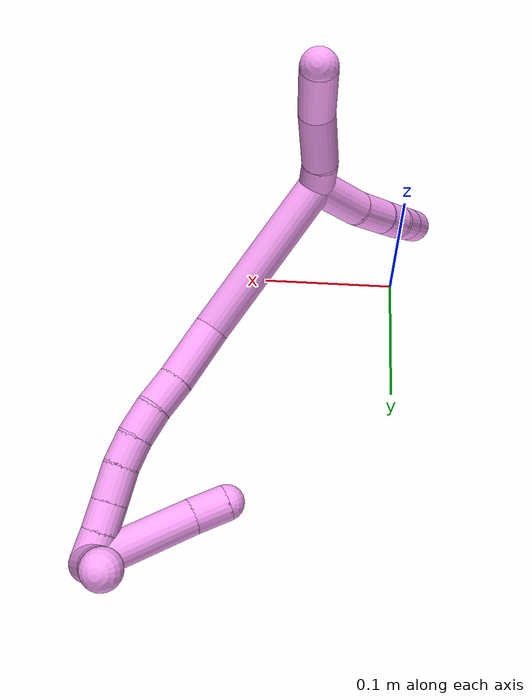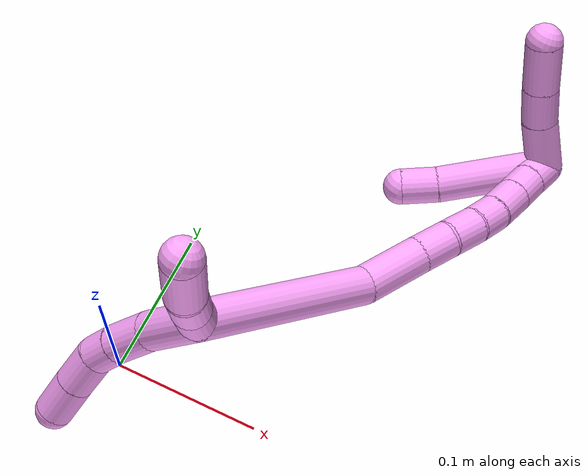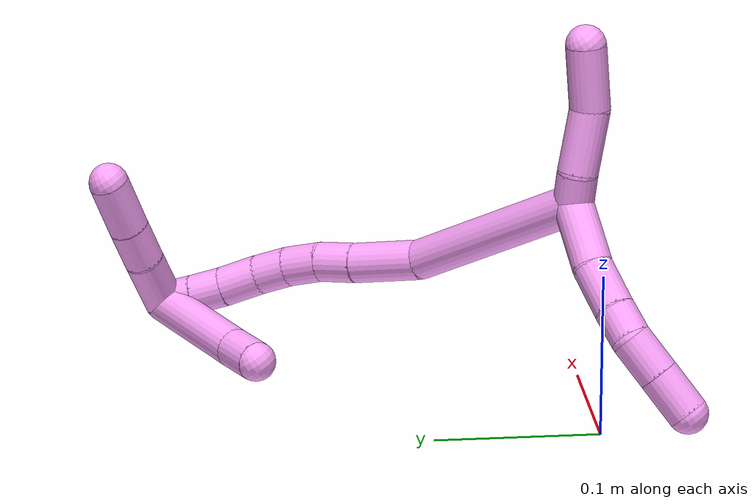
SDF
<sdf version="1.7">
 <world name="default">
  <model name="4">
   <static>0</static>
   <link name="4">
    <collision name="collision-cylinder-e_1_2_8">
     <pose>-0.014288 0.002356 -0.016151 -2.99675 -0.719067 2.76025</pose>
     <geometry><cylinder><radius>0.0125</radius><length>0.043385</length></cylinder></geometry>
     <surface>
      <friction><ode><mu>1.16</mu><mu2>1.16</mu2><slip1>0</slip1><slip2>0</slip2></ode></friction>
      <contact><ode><kp>1e+06</kp><kd>1</kd><max_vel>0</max_vel><min_depth>0.001</min_depth></ode></contact>
     </surface>
    </collision>
    <visual name="visual-cylinder-e_1_2_8">
     <pose>-0.014288 0.002356 -0.016151 -2.99675 -0.719067 2.76025</pose>
     <geometry><cylinder><radius>0.0125</radius><length>0.043385</length></cylinder></geometry>
     <material><ambient>1 0.65098 0.996078 1</ambient></material>
    </visual>
    <collision name="collision-cylinder-e_2_8_9">
     <pose>-0.037609 0.004214 -0.044514 3.10082 -0.636423 -3.01797</pose>
     <geometry><cylinder><radius>0.0125</radius><length>0.030396</length></cylinder></geometry>
     <surface>
      <friction><ode><mu>1.16</mu><mu2>1.16</mu2><slip1>0</slip1><slip2>0</slip2></ode></friction>
      <contact><ode><kp>1e+06</kp><kd>1</kd><max_vel>0</max_vel><min_depth>0.001</min_depth></ode></contact>
     </surface>
    </collision>
    <visual name="visual-cylinder-e_2_8_9">
     <pose>-0.037609 0.004214 -0.044514 3.10082 -0.636423 -3.01797</pose>
     <geometry><cylinder><radius>0.0125</radius><length>0.030396</length></cylinder></geometry>
     <material><ambient>1 0.65098 0.996078 1</ambient></material>
    </visual>
    <collision name="collision-cylinder-e_3_9_10">
     <pose>-0.05192 0.00323 -0.065327 3.08526 -0.549699 -2.94244</pose>
     <geometry><cylinder><radius>0.0125</radius><length>0.020206</length></cylinder></geometry>
     <surface>
      <friction><ode><mu>1.16</mu><mu2>1.16</mu2><slip1>0</slip1><slip2>0</slip2></ode></friction>
      <contact><ode><kp>1e+06</kp><kd>1</kd><max_vel>0</max_vel><min_depth>0.001</min_depth></ode></contact>
     </surface>
    </collision>
    <visual name="visual-cylinder-e_3_9_10">
     <pose>-0.05192 0.00323 -0.065327 3.08526 -0.549699 -2.94244</pose>
     <geometry><cylinder><radius>0.0125</radius><length>0.020206</length></cylinder></geometry>
     <material><ambient>1 0.65098 0.996078 1</ambient></material>
    </visual>
    <collision name="collision-cylinder-e_4_10_11">
     <pose>-0.060327 0.001124 -0.08704 3.01856 -0.232604 -2.17122</pose>
     <geometry><cylinder><radius>0.0125</radius><length>0.027154</length></cylinder></geometry>
     <surface>
      <friction><ode><mu>1.16</mu><mu2>1.16</mu2><slip1>0</slip1><slip2>0</slip2></ode></friction>
      <contact><ode><kp>1e+06</kp><kd>1</kd><max_vel>0</max_vel><min_depth>0.001</min_depth></ode></contact>
     </surface>
    </collision>
    <visual name="visual-cylinder-e_4_10_11">
     <pose>-0.060327 0.001124 -0.08704 3.01856 -0.232604 -2.17122</pose>
     <geometry><cylinder><radius>0.0125</radius><length>0.027154</length></cylinder></geometry>
     <material><ambient>1 0.65098 0.996078 1</ambient></material>
    </visual>
    <collision name="collision-cylinder-e_5_11_6">
     <pose>-0.066456 -0.002114 -0.114173 3.02678 -0.209358 -2.14049</pose>
     <geometry><cylinder><radius>0.0125</radius><length>0.02886</length></cylinder></geometry>
     <surface>
      <friction><ode><mu>1.16</mu><mu2>1.16</mu2><slip1>0</slip1><slip2>0</slip2></ode></friction>
      <contact><ode><kp>1e+06</kp><kd>1</kd><max_vel>0</max_vel><min_depth>0.001</min_depth></ode></contact>
     </surface>
    </collision>
    <visual name="visual-cylinder-e_5_11_6">
     <pose>-0.066456 -0.002114 -0.114173 3.02678 -0.209358 -2.14049</pose>
     <geometry><cylinder><radius>0.0125</radius><length>0.02886</length></cylinder></geometry>
     <material><ambient>1 0.65098 0.996078 1</ambient></material>
    </visual>
    <collision name="collision-cylinder-e_1_2_12">
     <pose>-0.000466 -0.006601 0.007761 0.704775 -0.045672 -0.016798</pose>
     <geometry><cylinder><radius>0.0125</radius><length>0.020399</length></cylinder></geometry>
     <surface>
      <friction><ode><mu>1.16</mu><mu2>1.16</mu2><slip1>0</slip1><slip2>0</slip2></ode></friction>
      <contact><ode><kp>1e+06</kp><kd>1</kd><max_vel>0</max_vel><min_depth>0.001</min_depth></ode></contact>
     </surface>
    </collision>
    <visual name="visual-cylinder-e_1_2_12">
     <pose>-0.000466 -0.006601 0.007761 0.704775 -0.045672 -0.016798</pose>
     <geometry><cylinder><radius>0.0125</radius><length>0.020399</length></cylinder></geometry>
     <material><ambient>1 0.65098 0.996078 1</ambient></material>
    </visual>
    <collision name="collision-cylinder-e_2_12_13">
     <pose>0.002129 -0.026629 0.029854 0.752839 0.154583 0.061204</pose>
     <geometry><cylinder><radius>0.0125</radius><length>0.039751</length></cylinder></geometry>
     <surface>
      <friction><ode><mu>1.16</mu><mu2>1.16</mu2><slip1>0</slip1><slip2>0</slip2></ode></friction>
      <contact><ode><kp>1e+06</kp><kd>1</kd><max_vel>0</max_vel><min_depth>0.001</min_depth></ode></contact>
     </surface>
    </collision>
    <visual name="visual-cylinder-e_2_12_13">
     <pose>0.002129 -0.026629 0.029854 0.752839 0.154583 0.061204</pose>
     <geometry><cylinder><radius>0.0125</radius><length>0.039751</length></cylinder></geometry>
     <material><ambient>1 0.65098 0.996078 1</ambient></material>
    </visual>
    <collision name="collision-cylinder-e_3_13_5">
     <pose>0.00527 -0.049807 0.061561 0.511375 0.004046 0.001058</pose>
     <geometry><cylinder><radius>0.0125</radius><length>0.03985</length></cylinder></geometry>
     <surface>
      <friction><ode><mu>1.16</mu><mu2>1.16</mu2><slip1>0</slip1><slip2>0</slip2></ode></friction>
      <contact><ode><kp>1e+06</kp><kd>1</kd><max_vel>0</max_vel><min_depth>0.001</min_depth></ode></contact>
     </surface>
    </collision>
    <visual name="visual-cylinder-e_3_13_5">
     <pose>0.00527 -0.049807 0.061561 0.511375 0.004046 0.001058</pose>
     <geometry><cylinder><radius>0.0125</radius><length>0.03985</length></cylinder></geometry>
     <material><ambient>1 0.65098 0.996078 1</ambient></material>
    </visual>
    <collision name="collision-cylinder-e_1_2_14">
     <pose>0.023994 0.056295 0.003355 -1.51126 0.402259 -0.379567</pose>
     <geometry><cylinder><radius>0.0125</radius><length>0.122573</length></cylinder></geometry>
     <surface>
      <friction><ode><mu>1.16</mu><mu2>1.16</mu2><slip1>0</slip1><slip2>0</slip2></ode></friction>
      <contact><ode><kp>1e+06</kp><kd>1</kd><max_vel>0</max_vel><min_depth>0.001</min_depth></ode></contact>
     </surface>
    </collision>
    <visual name="visual-cylinder-e_1_2_14">
     <pose>0.023994 0.056295 0.003355 -1.51126 0.402259 -0.379567</pose>
     <geometry><cylinder><radius>0.0125</radius><length>0.122573</length></cylinder></geometry>
     <material><ambient>1 0.65098 0.996078 1</ambient></material>
    </visual>
    <collision name="collision-cylinder-e_2_14_15">
     <pose>0.054452 0.13219 0.014686 -1.18437 0.296508 -0.20027</pose>
     <geometry><cylinder><radius>0.0125</radius><length>0.044253</length></cylinder></geometry>
     <surface>
      <friction><ode><mu>1.16</mu><mu2>1.16</mu2><slip1>0</slip1><slip2>0</slip2></ode></friction>
      <contact><ode><kp>1e+06</kp><kd>1</kd><max_vel>0</max_vel><min_depth>0.001</min_depth></ode></contact>
     </surface>
    </collision>
    <visual name="visual-cylinder-e_2_14_15">
     <pose>0.054452 0.13219 0.014686 -1.18437 0.296508 -0.20027</pose>
     <geometry><cylinder><radius>0.0125</radius><length>0.044253</length></cylinder></geometry>
     <material><ambient>1 0.65098 0.996078 1</ambient></material>
    </visual>
    <collision name="collision-cylinder-e_3_15_16">
     <pose>0.064971 0.162033 0.027667 -1.11622 0.341685 -0.214593</pose>
     <geometry><cylinder><radius>0.0125</radius><length>0.024198</length></cylinder></geometry>
     <surface>
      <friction><ode><mu>1.16</mu><mu2>1.16</mu2><slip1>0</slip1><slip2>0</slip2></ode></friction>
      <contact><ode><kp>1e+06</kp><kd>1</kd><max_vel>0</max_vel><min_depth>0.001</min_depth></ode></contact>
     </surface>
    </collision>
    <visual name="visual-cylinder-e_3_15_16">
     <pose>0.064971 0.162033 0.027667 -1.11622 0.341685 -0.214593</pose>
     <geometry><cylinder><radius>0.0125</radius><length>0.024198</length></cylinder></geometry>
     <material><ambient>1 0.65098 0.996078 1</ambient></material>
    </visual>
    <collision name="collision-cylinder-e_4_16_17">
     <pose>0.072196 0.182835 0.035932 -1.27136 0.279408 -0.206773</pose>
     <geometry><cylinder><radius>0.0125</radius><length>0.022996</length></cylinder></geometry>
     <surface>
      <friction><ode><mu>1.16</mu><mu2>1.16</mu2><slip1>0</slip1><slip2>0</slip2></ode></friction>
      <contact><ode><kp>1e+06</kp><kd>1</kd><max_vel>0</max_vel><min_depth>0.001</min_depth></ode></contact>
     </surface>
    </collision>
    <visual name="visual-cylinder-e_4_16_17">
     <pose>0.072196 0.182835 0.035932 -1.27136 0.279408 -0.206773</pose>
     <geometry><cylinder><radius>0.0125</radius><length>0.022996</length></cylinder></geometry>
     <material><ambient>1 0.65098 0.996078 1</ambient></material>
    </visual>
    <collision name="collision-cylinder-e_5_17_18">
     <pose>0.077154 0.203477 0.041424 -1.35301 0.171309 -0.137663</pose>
     <geometry><cylinder><radius>0.0125</radius><length>0.02096</length></cylinder></geometry>
     <surface>
      <friction><ode><mu>1.16</mu><mu2>1.16</mu2><slip1>0</slip1><slip2>0</slip2></ode></friction>
      <contact><ode><kp>1e+06</kp><kd>1</kd><max_vel>0</max_vel><min_depth>0.001</min_depth></ode></contact>
     </surface>
    </collision>
    <visual name="visual-cylinder-e_5_17_18">
     <pose>0.077154 0.203477 0.041424 -1.35301 0.171309 -0.137663</pose>
     <geometry><cylinder><radius>0.0125</radius><length>0.02096</length></cylinder></geometry>
     <material><ambient>1 0.65098 0.996078 1</ambient></material>
    </visual>
    <collision name="collision-cylinder-e_6_18_19">
     <pose>0.079361 0.225684 0.046116 -1.37055 0.034011 -0.027802</pose>
     <geometry><cylinder><radius>0.0125</radius><length>0.024757</length></cylinder></geometry>
     <surface>
      <friction><ode><mu>1.16</mu><mu2>1.16</mu2><slip1>0</slip1><slip2>0</slip2></ode></friction>
      <contact><ode><kp>1e+06</kp><kd>1</kd><max_vel>0</max_vel><min_depth>0.001</min_depth></ode></contact>
     </surface>
    </collision>
    <visual name="visual-cylinder-e_6_18_19">
     <pose>0.079361 0.225684 0.046116 -1.37055 0.034011 -0.027802</pose>
     <geometry><cylinder><radius>0.0125</radius><length>0.024757</length></cylinder></geometry>
     <material><ambient>1 0.65098 0.996078 1</ambient></material>
    </visual>
    <collision name="collision-cylinder-e_7_19_20">
     <pose>0.08004 0.247499 0.051238 -1.3028 0.025626 -0.019538</pose>
     <geometry><cylinder><radius>0.0125</radius><length>0.020106</length></cylinder></geometry>
     <surface>
      <friction><ode><mu>1.16</mu><mu2>1.16</mu2><slip1>0</slip1><slip2>0</slip2></ode></friction>
      <contact><ode><kp>1e+06</kp><kd>1</kd><max_vel>0</max_vel><min_depth>0.001</min_depth></ode></contact>
     </surface>
    </collision>
    <visual name="visual-cylinder-e_7_19_20">
     <pose>0.08004 0.247499 0.051238 -1.3028 0.025626 -0.019538</pose>
     <geometry><cylinder><radius>0.0125</radius><length>0.020106</length></cylinder></geometry>
     <material><ambient>1 0.65098 0.996078 1</ambient></material>
    </visual>
    <collision name="collision-cylinder-e_8_20_1">
     <pose>0.080929 0.266851 0.056701 -1.28844 0.062687 -0.047092</pose>
     <geometry><cylinder><radius>0.0125</radius><length>0.020157</length></cylinder></geometry>
     <surface>
      <friction><ode><mu>1.16</mu><mu2>1.16</mu2><slip1>0</slip1><slip2>0</slip2></ode></friction>
      <contact><ode><kp>1e+06</kp><kd>1</kd><max_vel>0</max_vel><min_depth>0.001</min_depth></ode></contact>
     </surface>
    </collision>
    <visual name="visual-cylinder-e_8_20_1">
     <pose>0.080929 0.266851 0.056701 -1.28844 0.062687 -0.047092</pose>
     <geometry><cylinder><radius>0.0125</radius><length>0.020157</length></cylinder></geometry>
     <material><ambient>1 0.65098 0.996078 1</ambient></material>
    </visual>
    <collision name="collision-cylinder-e_1_1_21">
     <pose>0.073845 0.271444 0.076263 0.293619 -0.415068 -0.062254</pose>
     <geometry><cylinder><radius>0.0125</radius><length>0.038265</length></cylinder></geometry>
     <surface>
      <friction><ode><mu>1.16</mu><mu2>1.16</mu2><slip1>0</slip1><slip2>0</slip2></ode></friction>
      <contact><ode><kp>1e+06</kp><kd>1</kd><max_vel>0</max_vel><min_depth>0.001</min_depth></ode></contact>
     </surface>
    </collision>
    <visual name="visual-cylinder-e_1_1_21">
     <pose>0.073845 0.271444 0.076263 0.293619 -0.415068 -0.062254</pose>
     <geometry><cylinder><radius>0.0125</radius><length>0.038265</length></cylinder></geometry>
     <material><ambient>1 0.65098 0.996078 1</ambient></material>
    </visual>
    <collision name="collision-cylinder-e_2_21_22">
     <pose>0.062158 0.262992 0.105215 0.270775 -0.304093 -0.04174</pose>
     <geometry><cylinder><radius>0.0125</radius><length>0.026527</length></cylinder></geometry>
     <surface>
      <friction><ode><mu>1.16</mu><mu2>1.16</mu2><slip1>0</slip1><slip2>0</slip2></ode></friction>
      <contact><ode><kp>1e+06</kp><kd>1</kd><max_vel>0</max_vel><min_depth>0.001</min_depth></ode></contact>
     </surface>
    </collision>
    <visual name="visual-cylinder-e_2_21_22">
     <pose>0.062158 0.262992 0.105215 0.270775 -0.304093 -0.04174</pose>
     <geometry><cylinder><radius>0.0125</radius><length>0.026527</length></cylinder></geometry>
     <material><ambient>1 0.65098 0.996078 1</ambient></material>
    </visual>
    <collision name="collision-cylinder-e_3_22_4">
     <pose>0.05359 0.254982 0.133761 0.275625 -0.264165 -0.036848</pose>
     <geometry><cylinder><radius>0.0125</radius><length>0.035208</length></cylinder></geometry>
     <surface>
      <friction><ode><mu>1.16</mu><mu2>1.16</mu2><slip1>0</slip1><slip2>0</slip2></ode></friction>
      <contact><ode><kp>1e+06</kp><kd>1</kd><max_vel>0</max_vel><min_depth>0.001</min_depth></ode></contact>
     </surface>
    </collision>
    <visual name="visual-cylinder-e_3_22_4">
     <pose>0.05359 0.254982 0.133761 0.275625 -0.264165 -0.036848</pose>
     <geometry><cylinder><radius>0.0125</radius><length>0.035208</length></cylinder></geometry>
     <material><ambient>1 0.65098 0.996078 1</ambient></material>
    </visual>
    <collision name="collision-cylinder-e_1_1_23">
     <pose>0.055024 0.257405 0.041561 2.32481 -0.791562 -1.53579</pose>
     <geometry><cylinder><radius>0.0125</radius><length>0.074597</length></cylinder></geometry>
     <surface>
      <friction><ode><mu>1.16</mu><mu2>1.16</mu2><slip1>0</slip1><slip2>0</slip2></ode></friction>
      <contact><ode><kp>1e+06</kp><kd>1</kd><max_vel>0</max_vel><min_depth>0.001</min_depth></ode></contact>
     </surface>
    </collision>
    <visual name="visual-cylinder-e_1_1_23">
     <pose>0.055024 0.257405 0.041561 2.32481 -0.791562 -1.53579</pose>
     <geometry><cylinder><radius>0.0125</radius><length>0.074597</length></cylinder></geometry>
     <material><ambient>1 0.65098 0.996078 1</ambient></material>
    </visual>
    <collision name="collision-cylinder-e_2_23_3">
     <pose>0.018756 0.231715 0.018792 2.20329 -0.872899 -1.48774</pose>
     <geometry><cylinder><radius>0.0125</radius><length>0.025403</length></cylinder></geometry>
     <surface>
      <friction><ode><mu>1.16</mu><mu2>1.16</mu2><slip1>0</slip1><slip2>0</slip2></ode></friction>
      <contact><ode><kp>1e+06</kp><kd>1</kd><max_vel>0</max_vel><min_depth>0.001</min_depth></ode></contact>
     </surface>
    </collision>
    <visual name="visual-cylinder-e_2_23_3">
     <pose>0.018756 0.231715 0.018792 2.20329 -0.872899 -1.48774</pose>
     <geometry><cylinder><radius>0.0125</radius><length>0.025403</length></cylinder></geometry>
     <material><ambient>1 0.65098 0.996078 1</ambient></material>
    </visual>
    <collision name="collision-sphere-3">
     <pose>0.009024 0.225132 0.013967 0 -0 0</pose>
     <geometry><sphere><radius>0.0125</radius></sphere></geometry>
     <surface>
      <friction><ode><mu>1.16</mu><mu2>1.16</mu2><slip1>0</slip1><slip2>0</slip2></ode></friction>
      <contact><ode><kp>1e+06</kp><kd>1</kd><max_vel>0</max_vel><min_depth>0.001</min_depth></ode></contact>
     </surface>
    </collision>
    <visual name="visual-sphere-3">
     <pose>0.009024 0.225132 0.013967 0 -0 0</pose>
     <geometry><sphere><radius>0.0125</radius></sphere></geometry>
     <material><ambient>1 0.65098 0.996078 1</ambient></material>
    </visual>
    <collision name="collision-sphere-23">
     <pose>0.028488 0.238299 0.023617 0 -0 0</pose>
     <geometry><sphere><radius>0.0125</radius></sphere></geometry>
     <surface>
      <friction><ode><mu>1.16</mu><mu2>1.16</mu2><slip1>0</slip1><slip2>0</slip2></ode></friction>
      <contact><ode><kp>1e+06</kp><kd>1</kd><max_vel>0</max_vel><min_depth>0.001</min_depth></ode></contact>
     </surface>
    </collision>
    <visual name="visual-sphere-23">
     <pose>0.028488 0.238299 0.023617 0 -0 0</pose>
     <geometry><sphere><radius>0.0125</radius></sphere></geometry>
     <material><ambient>1 0.65098 0.996078 1</ambient></material>
    </visual>
    <collision name="collision-sphere-4">
     <pose>0.048994 0.250358 0.150113 0 -0 0</pose>
     <geometry><sphere><radius>0.0125</radius></sphere></geometry>
     <surface>
      <friction><ode><mu>1.16</mu><mu2>1.16</mu2><slip1>0</slip1><slip2>0</slip2></ode></friction>
      <contact><ode><kp>1e+06</kp><kd>1</kd><max_vel>0</max_vel><min_depth>0.001</min_depth></ode></contact>
     </surface>
    </collision>
    <visual name="visual-sphere-4">
     <pose>0.048994 0.250358 0.150113 0 -0 0</pose>
     <geometry><sphere><radius>0.0125</radius></sphere></geometry>
     <material><ambient>1 0.65098 0.996078 1</ambient></material>
    </visual>
    <collision name="collision-sphere-22">
     <pose>0.058187 0.259607 0.117409 0 -0 0</pose>
     <geometry><sphere><radius>0.0125</radius></sphere></geometry>
     <surface>
      <friction><ode><mu>1.16</mu><mu2>1.16</mu2><slip1>0</slip1><slip2>0</slip2></ode></friction>
      <contact><ode><kp>1e+06</kp><kd>1</kd><max_vel>0</max_vel><min_depth>0.001</min_depth></ode></contact>
     </surface>
    </collision>
    <visual name="visual-sphere-22">
     <pose>0.058187 0.259607 0.117409 0 -0 0</pose>
     <geometry><sphere><radius>0.0125</radius></sphere></geometry>
     <material><ambient>1 0.65098 0.996078 1</ambient></material>
    </visual>
    <collision name="collision-sphere-21">
     <pose>0.06613 0.266377 0.093021 0 -0 0</pose>
     <geometry><sphere><radius>0.0125</radius></sphere></geometry>
     <surface>
      <friction><ode><mu>1.16</mu><mu2>1.16</mu2><slip1>0</slip1><slip2>0</slip2></ode></friction>
      <contact><ode><kp>1e+06</kp><kd>1</kd><max_vel>0</max_vel><min_depth>0.001</min_depth></ode></contact>
     </surface>
    </collision>
    <visual name="visual-sphere-21">
     <pose>0.06613 0.266377 0.093021 0 -0 0</pose>
     <geometry><sphere><radius>0.0125</radius></sphere></geometry>
     <material><ambient>1 0.65098 0.996078 1</ambient></material>
    </visual>
    <collision name="collision-sphere-1">
     <pose>0.08156 0.276511 0.059504 0 -0 0</pose>
     <geometry><sphere><radius>0.0125</radius></sphere></geometry>
     <surface>
      <friction><ode><mu>1.16</mu><mu2>1.16</mu2><slip1>0</slip1><slip2>0</slip2></ode></friction>
      <contact><ode><kp>1e+06</kp><kd>1</kd><max_vel>0</max_vel><min_depth>0.001</min_depth></ode></contact>
     </surface>
    </collision>
    <visual name="visual-sphere-1">
     <pose>0.08156 0.276511 0.059504 0 -0 0</pose>
     <geometry><sphere><radius>0.0125</radius></sphere></geometry>
     <material><ambient>1 0.65098 0.996078 1</ambient></material>
    </visual>
    <collision name="collision-sphere-6">
     <pose>-0.069455 -0.003731 -0.128195 0 -0 0</pose>
     <geometry><sphere><radius>0.0125</radius></sphere></geometry>
     <surface>
      <friction><ode><mu>1.16</mu><mu2>1.16</mu2><slip1>0</slip1><slip2>0</slip2></ode></friction>
      <contact><ode><kp>1e+06</kp><kd>1</kd><max_vel>0</max_vel><min_depth>0.001</min_depth></ode></contact>
     </surface>
    </collision>
    <visual name="visual-sphere-6">
     <pose>-0.069455 -0.003731 -0.128195 0 -0 0</pose>
     <geometry><sphere><radius>0.0125</radius></sphere></geometry>
     <material><ambient>1 0.65098 0.996078 1</ambient></material>
    </visual>
    <collision name="collision-sphere-11">
     <pose>-0.063457 -0.000497 -0.100151 0 -0 0</pose>
     <geometry><sphere><radius>0.0125</radius></sphere></geometry>
     <surface>
      <friction><ode><mu>1.16</mu><mu2>1.16</mu2><slip1>0</slip1><slip2>0</slip2></ode></friction>
      <contact><ode><kp>1e+06</kp><kd>1</kd><max_vel>0</max_vel><min_depth>0.001</min_depth></ode></contact>
     </surface>
    </collision>
    <visual name="visual-sphere-11">
     <pose>-0.063457 -0.000497 -0.100151 0 -0 0</pose>
     <geometry><sphere><radius>0.0125</radius></sphere></geometry>
     <material><ambient>1 0.65098 0.996078 1</ambient></material>
    </visual>
    <collision name="collision-sphere-10">
     <pose>-0.057198 0.002745 -0.073928 0 -0 0</pose>
     <geometry><sphere><radius>0.0125</radius></sphere></geometry>
     <surface>
      <friction><ode><mu>1.16</mu><mu2>1.16</mu2><slip1>0</slip1><slip2>0</slip2></ode></friction>
      <contact><ode><kp>1e+06</kp><kd>1</kd><max_vel>0</max_vel><min_depth>0.001</min_depth></ode></contact>
     </surface>
    </collision>
    <visual name="visual-sphere-10">
     <pose>-0.057198 0.002745 -0.073928 0 -0 0</pose>
     <geometry><sphere><radius>0.0125</radius></sphere></geometry>
     <material><ambient>1 0.65098 0.996078 1</ambient></material>
    </visual>
    <collision name="collision-sphere-9">
     <pose>-0.046642 0.003715 -0.056727 0 -0 0</pose>
     <geometry><sphere><radius>0.0125</radius></sphere></geometry>
     <surface>
      <friction><ode><mu>1.16</mu><mu2>1.16</mu2><slip1>0</slip1><slip2>0</slip2></ode></friction>
      <contact><ode><kp>1e+06</kp><kd>1</kd><max_vel>0</max_vel><min_depth>0.001</min_depth></ode></contact>
     </surface>
    </collision>
    <visual name="visual-sphere-9">
     <pose>-0.046642 0.003715 -0.056727 0 -0 0</pose>
     <geometry><sphere><radius>0.0125</radius></sphere></geometry>
     <material><ambient>1 0.65098 0.996078 1</ambient></material>
    </visual>
    <collision name="collision-sphere-2">
     <geometry><sphere><radius>0.0125</radius></sphere></geometry>
     <surface>
      <friction><ode><mu>1.16</mu><mu2>1.16</mu2><slip1>0</slip1><slip2>0</slip2></ode></friction>
      <contact><ode><kp>1e+06</kp><kd>1</kd><max_vel>0</max_vel><min_depth>0.001</min_depth></ode></contact>
     </surface>
    </collision>
    <visual name="visual-sphere-2">
     <geometry><sphere><radius>0.0125</radius></sphere></geometry>
     <material><ambient>1 0.65098 0.996078 1</ambient></material>
    </visual>
    <collision name="collision-sphere-19">
     <pose>0.079782 0.237808 0.048576 0 -0 0</pose>
     <geometry><sphere><radius>0.0125</radius></sphere></geometry>
     <surface>
      <friction><ode><mu>1.16</mu><mu2>1.16</mu2><slip1>0</slip1><slip2>0</slip2></ode></friction>
      <contact><ode><kp>1e+06</kp><kd>1</kd><max_vel>0</max_vel><min_depth>0.001</min_depth></ode></contact>
     </surface>
    </collision>
    <visual name="visual-sphere-19">
     <pose>0.079782 0.237808 0.048576 0 -0 0</pose>
     <geometry><sphere><radius>0.0125</radius></sphere></geometry>
     <material><ambient>1 0.65098 0.996078 1</ambient></material>
    </visual>
    <collision name="collision-sphere-8">
     <pose>-0.028577 0.004712 -0.032302 0 -0 0</pose>
     <geometry><sphere><radius>0.0125</radius></sphere></geometry>
     <surface>
      <friction><ode><mu>1.16</mu><mu2>1.16</mu2><slip1>0</slip1><slip2>0</slip2></ode></friction>
      <contact><ode><kp>1e+06</kp><kd>1</kd><max_vel>0</max_vel><min_depth>0.001</min_depth></ode></contact>
     </surface>
    </collision>
    <visual name="visual-sphere-8">
     <pose>-0.028577 0.004712 -0.032302 0 -0 0</pose>
     <geometry><sphere><radius>0.0125</radius></sphere></geometry>
     <material><ambient>1 0.65098 0.996078 1</ambient></material>
    </visual>
    <collision name="collision-sphere-12">
     <pose>-0.000931 -0.013202 0.015523 0 -0 0</pose>
     <geometry><sphere><radius>0.0125</radius></sphere></geometry>
     <surface>
      <friction><ode><mu>1.16</mu><mu2>1.16</mu2><slip1>0</slip1><slip2>0</slip2></ode></friction>
      <contact><ode><kp>1e+06</kp><kd>1</kd><max_vel>0</max_vel><min_depth>0.001</min_depth></ode></contact>
     </surface>
    </collision>
    <visual name="visual-sphere-12">
     <pose>-0.000931 -0.013202 0.015523 0 -0 0</pose>
     <geometry><sphere><radius>0.0125</radius></sphere></geometry>
     <material><ambient>1 0.65098 0.996078 1</ambient></material>
    </visual>
    <collision name="collision-sphere-13">
     <pose>0.005189 -0.040056 0.044185 0 -0 0</pose>
     <geometry><sphere><radius>0.0125</radius></sphere></geometry>
     <surface>
      <friction><ode><mu>1.16</mu><mu2>1.16</mu2><slip1>0</slip1><slip2>0</slip2></ode></friction>
      <contact><ode><kp>1e+06</kp><kd>1</kd><max_vel>0</max_vel><min_depth>0.001</min_depth></ode></contact>
     </surface>
    </collision>
    <visual name="visual-sphere-13">
     <pose>0.005189 -0.040056 0.044185 0 -0 0</pose>
     <geometry><sphere><radius>0.0125</radius></sphere></geometry>
     <material><ambient>1 0.65098 0.996078 1</ambient></material>
    </visual>
    <collision name="collision-sphere-5">
     <pose>0.00535 -0.059558 0.078937 0 -0 0</pose>
     <geometry><sphere><radius>0.0125</radius></sphere></geometry>
     <surface>
      <friction><ode><mu>1.16</mu><mu2>1.16</mu2><slip1>0</slip1><slip2>0</slip2></ode></friction>
      <contact><ode><kp>1e+06</kp><kd>1</kd><max_vel>0</max_vel><min_depth>0.001</min_depth></ode></contact>
     </surface>
    </collision>
    <visual name="visual-sphere-5">
     <pose>0.00535 -0.059558 0.078937 0 -0 0</pose>
     <geometry><sphere><radius>0.0125</radius></sphere></geometry>
     <material><ambient>1 0.65098 0.996078 1</ambient></material>
    </visual>
    <collision name="collision-sphere-14">
     <pose>0.047987 0.112589 0.006711 0 -0 0</pose>
     <geometry><sphere><radius>0.0125</radius></sphere></geometry>
     <surface>
      <friction><ode><mu>1.16</mu><mu2>1.16</mu2><slip1>0</slip1><slip2>0</slip2></ode></friction>
      <contact><ode><kp>1e+06</kp><kd>1</kd><max_vel>0</max_vel><min_depth>0.001</min_depth></ode></contact>
     </surface>
    </collision>
    <visual name="visual-sphere-14">
     <pose>0.047987 0.112589 0.006711 0 -0 0</pose>
     <geometry><sphere><radius>0.0125</radius></sphere></geometry>
     <material><ambient>1 0.65098 0.996078 1</ambient></material>
    </visual>
    <collision name="collision-sphere-15">
     <pose>0.060917 0.151791 0.022661 0 -0 0</pose>
     <geometry><sphere><radius>0.0125</radius></sphere></geometry>
     <surface>
      <friction><ode><mu>1.16</mu><mu2>1.16</mu2><slip1>0</slip1><slip2>0</slip2></ode></friction>
      <contact><ode><kp>1e+06</kp><kd>1</kd><max_vel>0</max_vel><min_depth>0.001</min_depth></ode></contact>
     </surface>
    </collision>
    <visual name="visual-sphere-15">
     <pose>0.060917 0.151791 0.022661 0 -0 0</pose>
     <geometry><sphere><radius>0.0125</radius></sphere></geometry>
     <material><ambient>1 0.65098 0.996078 1</ambient></material>
    </visual>
    <collision name="collision-sphere-16">
     <pose>0.069025 0.172274 0.032672 0 -0 0</pose>
     <geometry><sphere><radius>0.0125</radius></sphere></geometry>
     <surface>
      <friction><ode><mu>1.16</mu><mu2>1.16</mu2><slip1>0</slip1><slip2>0</slip2></ode></friction>
      <contact><ode><kp>1e+06</kp><kd>1</kd><max_vel>0</max_vel><min_depth>0.001</min_depth></ode></contact>
     </surface>
    </collision>
    <visual name="visual-sphere-16">
     <pose>0.069025 0.172274 0.032672 0 -0 0</pose>
     <geometry><sphere><radius>0.0125</radius></sphere></geometry>
     <material><ambient>1 0.65098 0.996078 1</ambient></material>
    </visual>
    <collision name="collision-sphere-17">
     <pose>0.075367 0.193395 0.039192 0 -0 0</pose>
     <geometry><sphere><radius>0.0125</radius></sphere></geometry>
     <surface>
      <friction><ode><mu>1.16</mu><mu2>1.16</mu2><slip1>0</slip1><slip2>0</slip2></ode></friction>
      <contact><ode><kp>1e+06</kp><kd>1</kd><max_vel>0</max_vel><min_depth>0.001</min_depth></ode></contact>
     </surface>
    </collision>
    <visual name="visual-sphere-17">
     <pose>0.075367 0.193395 0.039192 0 -0 0</pose>
     <geometry><sphere><radius>0.0125</radius></sphere></geometry>
     <material><ambient>1 0.65098 0.996078 1</ambient></material>
    </visual>
    <collision name="collision-sphere-18">
     <pose>0.07894 0.21356 0.043655 0 -0 0</pose>
     <geometry><sphere><radius>0.0125</radius></sphere></geometry>
     <surface>
      <friction><ode><mu>1.16</mu><mu2>1.16</mu2><slip1>0</slip1><slip2>0</slip2></ode></friction>
      <contact><ode><kp>1e+06</kp><kd>1</kd><max_vel>0</max_vel><min_depth>0.001</min_depth></ode></contact>
     </surface>
    </collision>
    <visual name="visual-sphere-18">
     <pose>0.07894 0.21356 0.043655 0 -0 0</pose>
     <geometry><sphere><radius>0.0125</radius></sphere></geometry>
     <material><ambient>1 0.65098 0.996078 1</ambient></material>
    </visual>
    <collision name="collision-sphere-20">
     <pose>0.080297 0.25719 0.053899 0 -0 0</pose>
     <geometry><sphere><radius>0.0125</radius></sphere></geometry>
     <surface>
      <friction><ode><mu>1.16</mu><mu2>1.16</mu2><slip1>0</slip1><slip2>0</slip2></ode></friction>
      <contact><ode><kp>1e+06</kp><kd>1</kd><max_vel>0</max_vel><min_depth>0.001</min_depth></ode></contact>
     </surface>
    </collision>
    <visual name="visual-sphere-20">
     <pose>0.080297 0.25719 0.053899 0 -0 0</pose>
     <geometry><sphere><radius>0.0125</radius></sphere></geometry>
     <material><ambient>1 0.65098 0.996078 1</ambient></material>
    </visual>
    <inertial>
     <pose>0.02702 0.119464 0.02067 0 -0 0</pose>
     <mass>0.75</mass>
     <inertia>
      <ixx>7.5e-05</ixx>
      <ixy>0</ixy>
      <ixz>0</ixz>
      <iyy>2.3e-05</iyy>
      <iyz>0</iyz>
      <izz>-0.000151</izz>
     </inertia>
    </inertial>
   </link>
   <pose>0.064082 0.009278 0.124119 -0.585527 -0.015478 -0.201442</pose>
  </model>
 </world>
</sdf>
